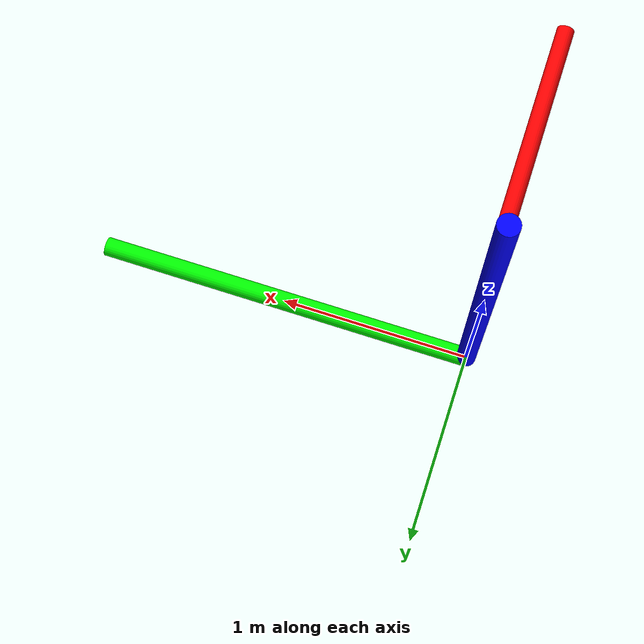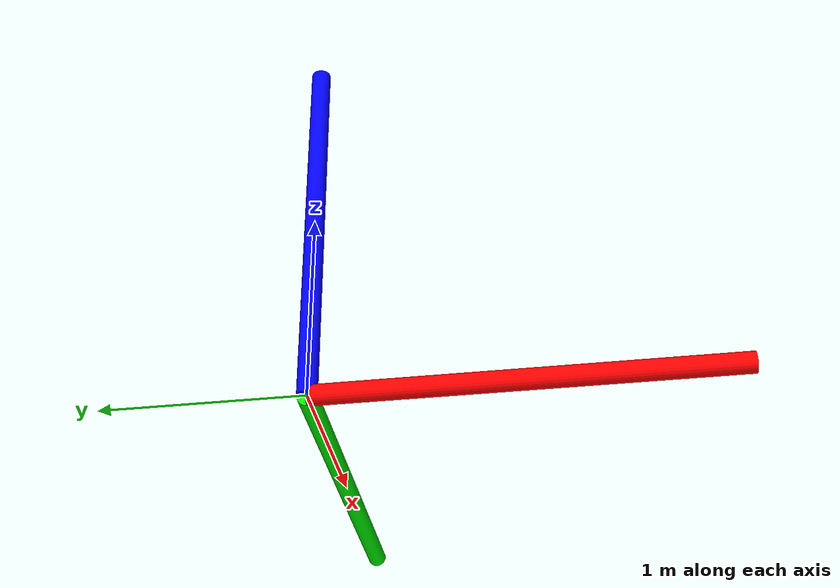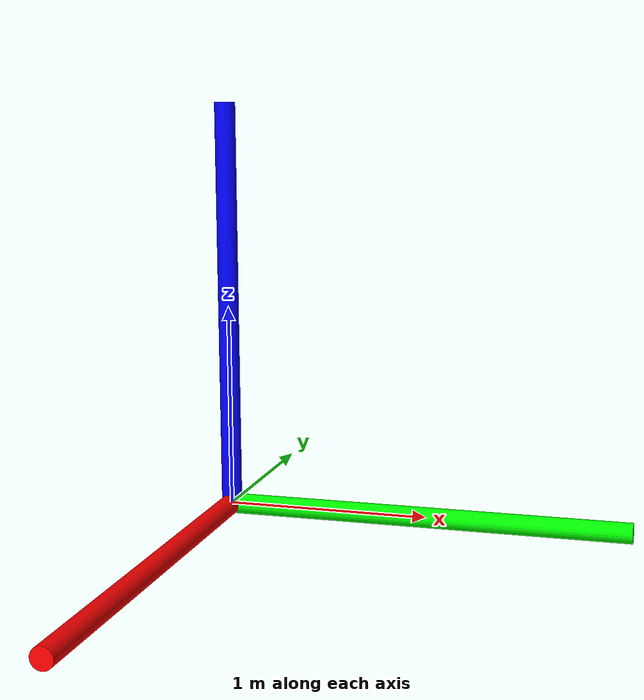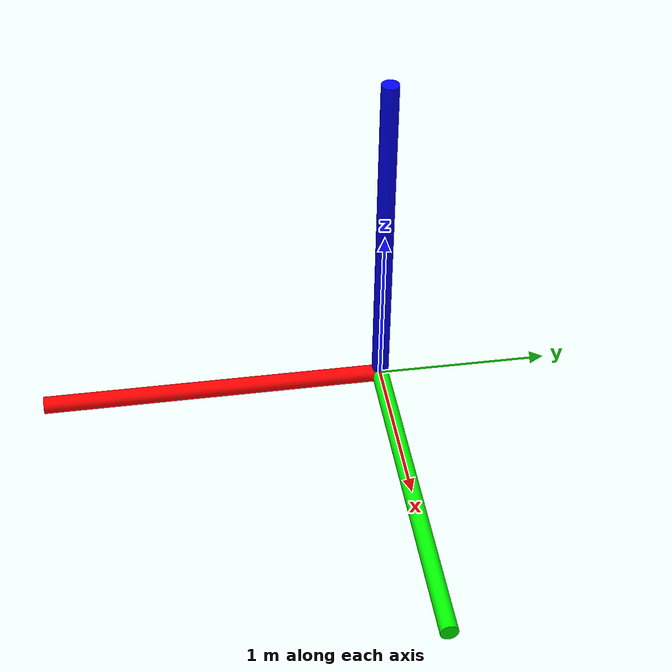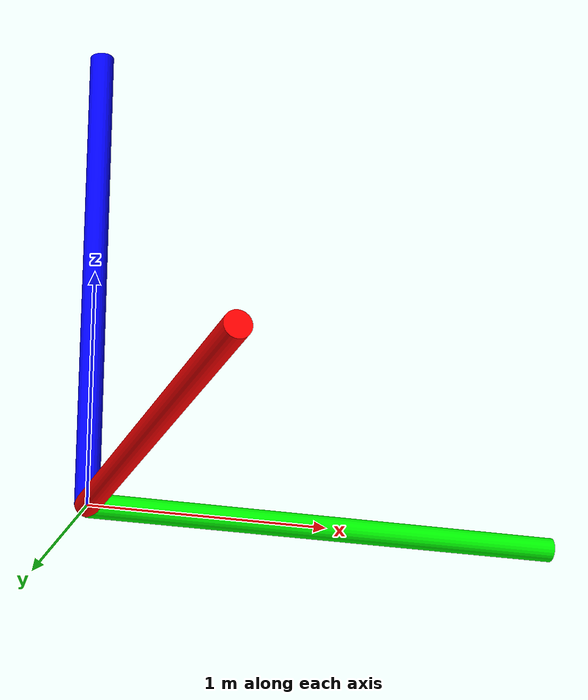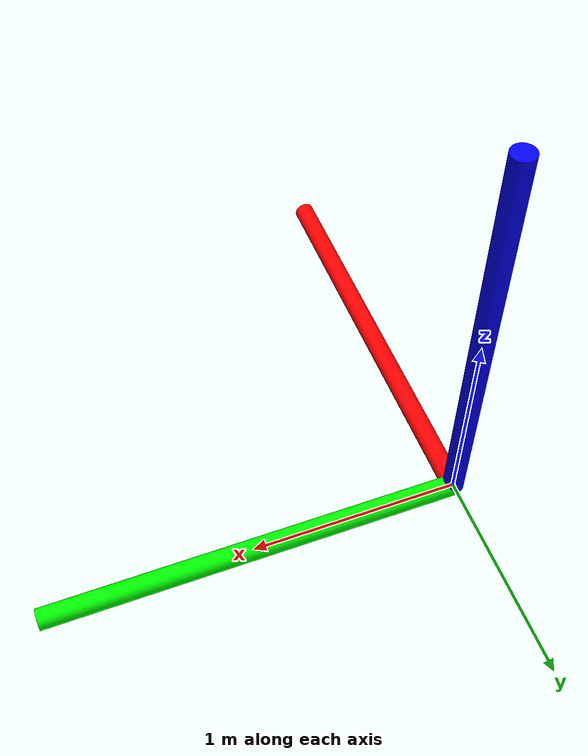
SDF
<?xml version='1.0'?>
<sdf version='1.6'>
  <model name='axes'>
    <static>true</static>
    <pose>0 0 0 0 0 0</pose>

    <link name="x_axis">
      <visual name="x_visual">
        <pose degrees="true">0 -1 0 0 90 90</pose>
        <geometry>
          <cylinder>
            <radius>0.05</radius>
            <length>2</length>
          </cylinder>
        </geometry>
        <material>
          <ambient>1 0 0 1</ambient>
          <diffuse>1 0 0 1</diffuse>
          <specular>1 0 0 1</specular>
        </material>
      </visual>
    </link>

    <link name="y_axis">
      <visual name="y_visual">
        <pose degrees="true">1 0 0 90 0 90</pose>
        <geometry>
          <cylinder>
            <radius>0.05</radius>
            <length>2</length>
          </cylinder>
        </geometry>
        <material>
          <ambient>0 1 0 1</ambient>
          <diffuse>0 1 0 1</diffuse>
          <specular>0 1 0 1</specular>
        </material>
      </visual>
    </link>

    <link name="z_axis">
      <visual name="z_visual">
        <pose degrees="true">0 0 1 0 0 0</pose>
        <geometry>
          <cylinder>
            <radius>0.05</radius>
            <length>2</length>
          </cylinder>
        </geometry>
        <material>
          <ambient>0 0 1 1</ambient>
          <diffuse>0 0 1 1</diffuse>
          <specular>0 0 1 1</specular>
        </material>
      </visual>
    </link>

  </model>
</sdf>
